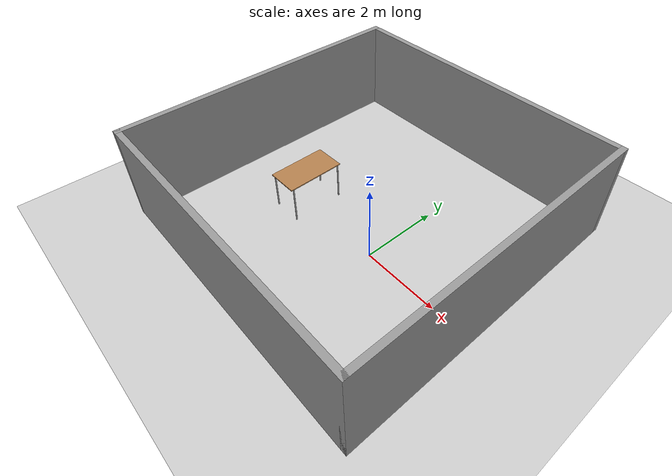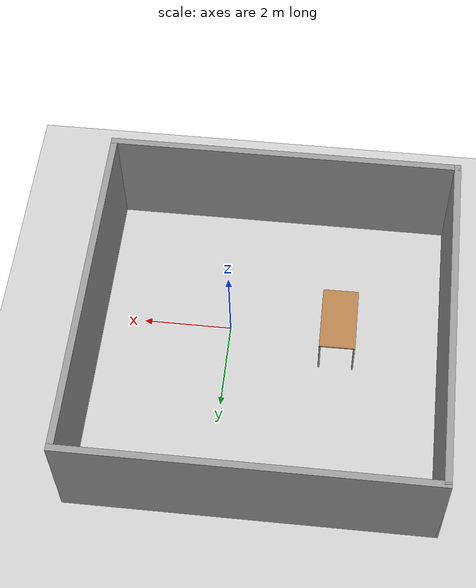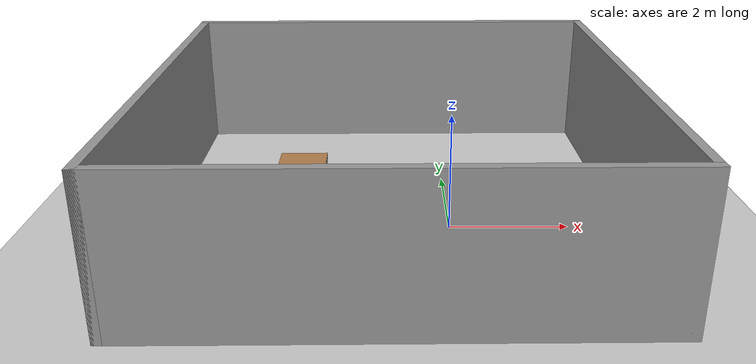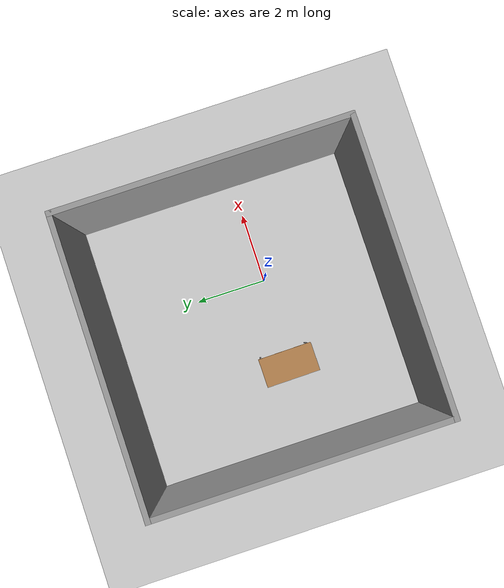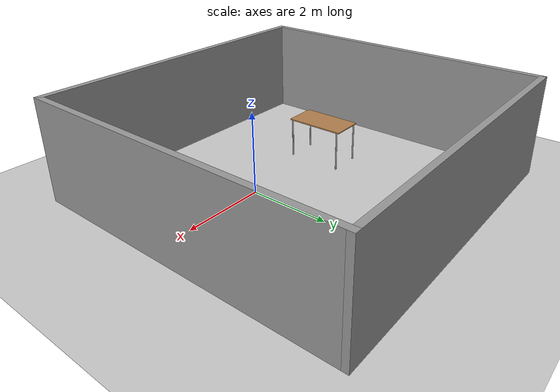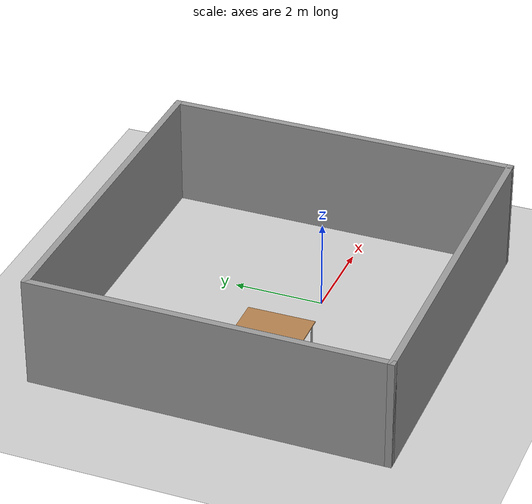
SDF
<sdf version="1.6">
 <world name="default">
  <light name="sun" type="directional">
   <pose>0 0 10 0 -0 0</pose>
   <diffuse>0.8 0.8 0.8 1</diffuse>
   <specular>0.1 0.1 0.1 1</specular>
   <attenuation>
    <range>1000</range>
    <constant>0.9</constant>
    <linear>0.01</linear>
    <quadratic>0.001</quadratic>
   </attenuation>
   <direction>-0.5 0.5 -1</direction>
  </light>
  <model name="ground_plane">
   <static>1</static>
   <link name="link">
    <collision name="collision">
     <geometry><plane><normal>0 0 1</normal><size>100 100</size></plane></geometry>
     <surface>
      <contact><collide_bitmask>65535</collide_bitmask></contact>
      <friction><ode><mu>100</mu><mu2>50</mu2></ode></friction>
     </surface>
    </collision>
    <visual name="visual">
     <cast_shadows>0</cast_shadows>
     <geometry><plane><normal>0 0 1</normal><size>100 100</size></plane></geometry>
     <material>
      <script><uri>file://media/materials/scripts/gazebo.material</uri><name>Gazebo/Grey</name></script>
     </material>
    </visual>
   </link>
  </model>
  <gravity>0 0 -9.8</gravity>
  <magnetic_field>6e-06 2.3e-05 -4.2e-05</magnetic_field>
  <atmosphere type="adiabatic"/>
  <physics name="default_physics" default="0" type="ode">
   <max_step_size>0.001</max_step_size>
   <real_time_factor>1</real_time_factor>
   <real_time_update_rate>1000</real_time_update_rate>
  </physics>
  <scene><ambient>0.4 0.4 0.4 1</ambient><background>0.7 0.7 0.7 1</background><shadows>1</shadows></scene>
  <spherical_coordinates>
   <surface_model>EARTH_WGS84</surface_model>
   <latitude_deg>0</latitude_deg>
   <longitude_deg>0</longitude_deg>
   <elevation>0</elevation>
   <heading_deg>0</heading_deg>
  </spherical_coordinates>
  <model name="Untitled">
   <pose>-0.925 0.695 0 0 -0 0</pose>
   <link name="Wall_0">
    <collision name="Wall_0_Collision">
     <geometry><box><size>8 0.15 2.5</size></box></geometry>
     <pose>0 0 1.25 0 -0 0</pose>
    </collision>
    <visual name="Wall_0_Visual">
     <pose>0 0 1.25 0 -0 0</pose>
     <geometry><box><size>8 0.15 2.5</size></box></geometry>
     <material>
      <script><uri>file://media/materials/scripts/gazebo.material</uri><name>Gazebo/Grey</name></script>
      <ambient>1 1 1 1</ambient>
     </material>
     <meta><layer>0</layer></meta>
    </visual>
    <pose>0 -3.925 0 0 -0 0</pose>
   </link>
   <link name="Wall_1">
    <collision name="Wall_1_Collision">
     <geometry><box><size>8 0.15 2.5</size></box></geometry>
     <pose>0 0 1.25 0 -0 0</pose>
    </collision>
    <visual name="Wall_1_Visual">
     <pose>0 0 1.25 0 -0 0</pose>
     <geometry><box><size>8 0.15 2.5</size></box></geometry>
     <material>
      <script><uri>file://media/materials/scripts/gazebo.material</uri><name>Gazebo/Grey</name></script>
      <ambient>1 1 1 1</ambient>
     </material>
     <meta><layer>0</layer></meta>
    </visual>
    <pose>3.925 0 0 0 -0 1.5708</pose>
   </link>
   <link name="Wall_3">
    <collision name="Wall_3_Collision">
     <geometry><box><size>8 0.15 2.5</size></box></geometry>
     <pose>0 0 1.25 0 -0 0</pose>
    </collision>
    <visual name="Wall_3_Visual">
     <pose>0 0 1.25 0 -0 0</pose>
     <geometry><box><size>8 0.15 2.5</size></box></geometry>
     <material>
      <script><uri>file://media/materials/scripts/gazebo.material</uri><name>Gazebo/Grey</name></script>
      <ambient>1 1 1 1</ambient>
     </material>
     <meta><layer>0</layer></meta>
    </visual>
    <pose>-3.925 0 0 0 -0 1.5708</pose>
   </link>
   <link name="Wall_4">
    <collision name="Wall_4_Collision">
     <geometry><box><size>8 0.15 2.5</size></box></geometry>
     <pose>0 0 1.25 0 -0 0</pose>
    </collision>
    <visual name="Wall_4_Visual">
     <pose>0 0 1.25 0 -0 0</pose>
     <geometry><box><size>8 0.15 2.5</size></box></geometry>
     <material>
      <script><uri>file://media/materials/scripts/gazebo.material</uri><name>Gazebo/Grey</name></script>
      <ambient>1 1 1 1</ambient>
     </material>
     <meta><layer>0</layer></meta>
    </visual>
    <pose>0 3.925 0 0 -0 0</pose>
   </link>
   <static>1</static>
  </model>
  <model name="table">
   <static>1</static>
   <link name="link">
    <collision name="surface">
     <pose>0 0 1 0 -0 0</pose>
     <geometry><box><size>1.5 0.8 0.03</size></box></geometry>
     <surface><friction><ode><mu>0.6</mu><mu2>0.6</mu2></ode></friction></surface>
    </collision>
    <visual name="visual1">
     <pose>0 0 1 0 -0 0</pose>
     <geometry><box><size>1.5 0.8 0.03</size></box></geometry>
     <material>
      <script><uri>file://media/materials/scripts/gazebo.material</uri><name>Gazebo/Wood</name></script>
     </material>
    </visual>
    <collision name="front_left_leg">
     <pose>0.68 0.38 0.5 0 -0 0</pose>
     <geometry><cylinder><radius>0.02</radius><length>1</length></cylinder></geometry>
    </collision>
    <visual name="front_left_leg">
     <pose>0.68 0.38 0.5 0 -0 0</pose>
     <geometry><cylinder><radius>0.02</radius><length>1</length></cylinder></geometry>
     <material>
      <script><uri>file://media/materials/scripts/gazebo.material</uri><name>Gazebo/Grey</name></script>
     </material>
    </visual>
    <collision name="front_right_leg">
     <pose>0.68 -0.38 0.5 0 -0 0</pose>
     <geometry><cylinder><radius>0.02</radius><length>1</length></cylinder></geometry>
    </collision>
    <visual name="front_right_leg">
     <pose>0.68 -0.38 0.5 0 -0 0</pose>
     <geometry><cylinder><radius>0.02</radius><length>1</length></cylinder></geometry>
     <material>
      <script><uri>file://media/materials/scripts/gazebo.material</uri><name>Gazebo/Grey</name></script>
     </material>
    </visual>
    <collision name="back_right_leg">
     <pose>-0.68 -0.38 0.5 0 -0 0</pose>
     <geometry><cylinder><radius>0.02</radius><length>1</length></cylinder></geometry>
    </collision>
    <visual name="back_right_leg">
     <pose>-0.68 -0.38 0.5 0 -0 0</pose>
     <geometry><cylinder><radius>0.02</radius><length>1</length></cylinder></geometry>
     <material>
      <script><uri>file://media/materials/scripts/gazebo.material</uri><name>Gazebo/Grey</name></script>
     </material>
    </visual>
    <collision name="back_left_leg">
     <pose>-0.68 0.38 0.5 0 -0 0</pose>
     <geometry><cylinder><radius>0.02</radius><length>1</length></cylinder></geometry>
    </collision>
    <visual name="back_left_leg">
     <pose>-0.68 0.38 0.5 0 -0 0</pose>
     <geometry><cylinder><radius>0.02</radius><length>1</length></cylinder></geometry>
     <material>
      <script><uri>file://media/materials/scripts/gazebo.material</uri><name>Gazebo/Grey</name></script>
     </material>
    </visual>
   </link>
   <pose>-2.47486 0.125454 0 0 0 -1.56144</pose>
  </model>
 </world>
</sdf>
